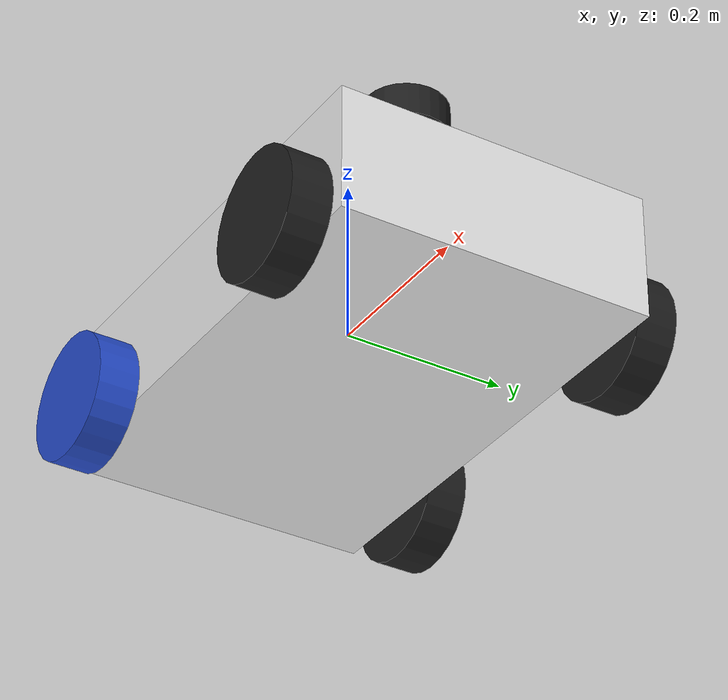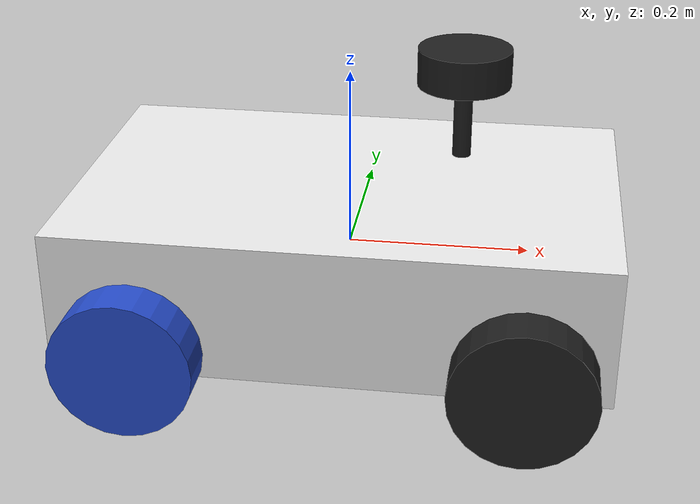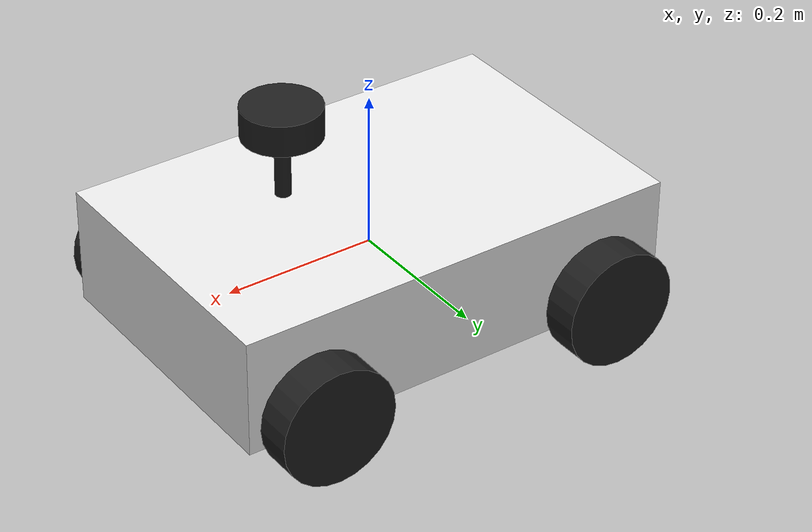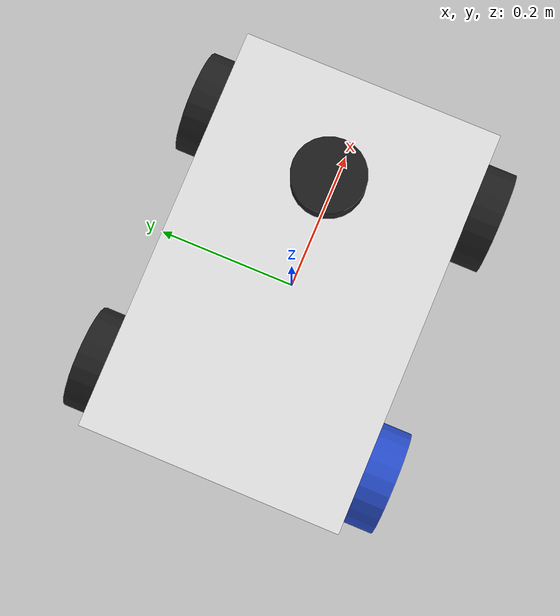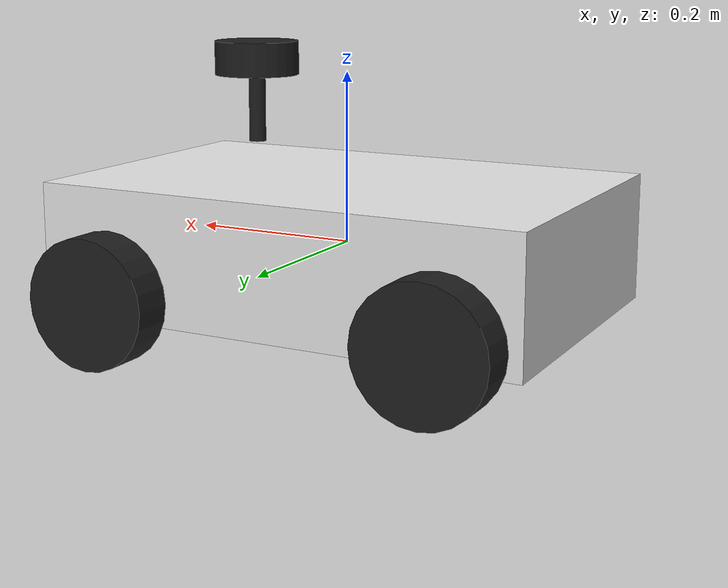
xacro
<?xml version="1.0"?>
<robot xmlns:xacro="http://www.ros.org/wiki/xacro"  name="robot">

    <!-- DIFF DRIVE GAZEBO -->

    <!-- SLAM STUFF -->
    <xacro:arg name="use_ros2_control" default="true"/>
    <xacro:arg name="sim_mode" default="false"/>

    <xacro:include filename="robot_core.xacro" />

    <xacro:if value="$(arg use_ros2_control)">
        <xacro:include filename="ros2_control.xacro" />
    </xacro:if>
    <xacro:unless value="$(arg use_ros2_control)">
        <xacro:include filename="gazebo_control.xacro" />
    </xacro:unless>
    <xacro:include filename="lidar.xacro" />
</robot>

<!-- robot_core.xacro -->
<robot xmlns:xacro="http://www.ros.org/wiki/xacro">

    <!-- Body Dimensions -->
    <xacro:property name="body_link_x_dim" value="0.59" />
    <xacro:property name="body_link_y_dim" value="0.38" />
    <xacro:property name="body_link_z_dim" value="0.1524" />

    <!-- wheel Dimesnions  -->
    <xacro:property name="wheel_link_radius" value="0.0762" />
    <xacro:property name="wheel_link_length" value="0.04826" />
    <xacro:property name="wheel_link_z_location" value="-0.04826" />

    <!-- Material Density -->
    <xacro:property name="body_density" value="2710.0" />
    <xacro:property name="wheel_density" value="1100.0" />

    <!-- Pi COnstant -->
    <xacro:property name="pi_const" value="3.14159265" />

    <!-- Robot body and wheel mass -->
    <xacro:property name="body_mass" value="${body_density*body_link_x_dim*body_link_y_dim*body_link_z_dim}" />
    <xacro:property name="wheel_mass" value="${wheel_density*pi_const*wheel_link_radius*wheel_link_radius*wheel_link_length}" />

    <!-- mOMENT OF INERTIA OF THE wheel -->
    <xacro:property name="Iz_wheel" value="${0.5*wheel_mass*wheel_link_radius*wheel_link_radius}" />
    <xacro:property name="I_wheel" value="${(1.0/12.0)*wheel_mass*(3.0*wheel_link_radius*wheel_link_radius+wheel_link_length*wheel_link_length)}" />

    <!-- This macro defines the complete inertial section of the wheel -->
    <xacro:macro name="inertia_wheel">
        <inertial>
        <origin rpu="0 0 0" xyz="0 0 0"/>
        <mass value="${wheel_mass}" />
        <inertia ixx="${I_wheel}" ixy="0.0" ixz="0.0" iyy="${I_wheel}" iyz="0" izz="${Iz_wheel}"/>
        </inertial>
    </xacro:macro>

    <!-- Addin Gazebo Options -->
    <link name="base_link">
    </link>
    <joint name="base_footprint_joint" type="fixed">
        <parent link="base_link" />
        <child link="base_footprint" />
        <origin xyz ="0 0 0" rpy="0 0 0"/>
    </joint>
    <link name="base_footprint"></link>

    <joint name="body_joint" type="fixed">
        <parent link="base_link" />
        <child link="body_link" />
    </joint>

    <link name="body_link">
        <visual>
            <geometry>
                <box size="${body_link_x_dim} ${body_link_y_dim} ${body_link_z_dim}" />
            </geometry>
            <origin rpy="0 0 0" xyz="0 0 0" />
        </visual>
        <collision>
            <geometry>
                <box size="${body_link_x_dim} ${body_link_y_dim} ${body_link_z_dim}" />
            </geometry>"
            <origin rpy="0 0 0" xyz="0 0 0" />
        </collision>
        <inertial>
            <origin rpu="0 0 0" xyz="0 0 0"/>
            <mass value="${body_mass}" />
        <inertia ixx="${(1.0/12.0)*body_mass*((body_link_y_dim*body_link_y_dim)+(body_link_z_dim*body_link_z_dim))}" ixy="0" ixz="0"
        iyy="${(1.0/12.0)*body_mass*((body_link_x_dim*body_link_x_dim)+(body_link_z_dim*body_link_z_dim))}" iyz="0"
        izz="${(1.0/12.0)*body_mass*((body_link_y_dim*body_link_y_dim)+(body_link_x_dim*body_link_x_dim))}"></inertia>

        </inertial>

    </link>
    <gazebo reference="body_link">
        <material>Gazebo/White</material>
    </gazebo>

    <!-- BACK Right wheel  -->
    <joint name="wheel1_joint" type="continuous">
        <parent link="body_link" />
        <child link="wheel1_link" />
        <origin xyz="${(-body_link_x_dim/2)+(1.2*wheel_link_radius)} ${(-body_link_y_dim/2)-(wheel_link_length/2)} ${wheel_link_z_location}" rpy="0 0 0" />
        <axis xyz="0 1 0" />
        <limit effort="1000" velocity="1000"/>
        <dynamics damping="1.0" friction="1.0" />
    </joint>
    <link name="wheel1_link">
        <visual>
            <origin rpy="1.570795 0 0" xyz="0 0 0" />
            <geometry>
                <cylinder length="${wheel_link_length}" radius="${wheel_link_radius}"/>
            </geometry>
            <material name="blue" />
        </visual>
        <collision>
            <origin rpy="1.570795 0 0" xyz="0 0 0" />
            <geometry>
                <cylinder length="${wheel_link_length}" radius="${wheel_link_radius}"/>
            </geometry>
            <material name="black" />
        </collision>

        <xacro:inertia_wheel />
    </link>
    <gazebo reference="wheel1_link">
        <material>Gazebo/Black</material>
    </gazebo>

    <!-- BACK Left wheel  -->
    <joint name="wheel2_joint" type="continuous">
        <parent link="body_link" />
        <child link="wheel2_link" />
        <origin xyz="${-body_link_x_dim/2+1.2*wheel_link_radius} ${body_link_y_dim/2+wheel_link_length/2} ${wheel_link_z_location}" rpy="0 0 0" />
        <axis xyz="0 1 0" />
        <limit effort="1000" velocity="1000"/>
        <dynamics damping="1.0" friction="1.0" />
    </joint>
    <link name="wheel2_link">
        <visual>
            <origin rpy="1.570795 0 0" xyz="0 0 0" />
            <geometry>
                <cylinder length="${wheel_link_length}" radius="${wheel_link_radius}"/>
            </geometry>
            <material name="black" />
        </visual>
        <collision>
            <origin rpy="1.570795 0 0" xyz="0 0 0" />
            <geometry>
                <cylinder length="${wheel_link_length}" radius="${wheel_link_radius}"/>
            </geometry>
            <material name="black" />
        </collision>

        <xacro:inertia_wheel />
    </link>
    <gazebo reference="wheel2_link">
        <material>Gazebo/Black</material>
    </gazebo>

    <!-- FRONT right wheel  -->
    <joint name="wheel3_joint" type="continuous">
        <parent link="body_link" />
        <child link="wheel3_link" />
        <origin xyz="${body_link_x_dim/2-1.2*wheel_link_radius} ${-body_link_y_dim/2-wheel_link_length/2} ${wheel_link_z_location}" rpy="0 0 0" />
        <axis xyz="0 1 0" />
        <limit effort="1000" velocity="1000"/>
        <dynamics damping="1.0" friction="1.0" />
    </joint>
    <link name="wheel3_link">
        <visual>
            <origin rpy="1.570795 0 0" xyz="0 0 0" />
            <geometry>
                <cylinder length="${wheel_link_length}" radius="${wheel_link_radius}"/>
            </geometry>
            <material name="black" />
        </visual>
        <collision>
            <origin rpy="1.570795 0 0" xyz="0 0 0" />
            <geometry>
                <cylinder length="${wheel_link_length}" radius="${wheel_link_radius}"/>
            </geometry>
            <material name="black" />
        </collision>

        <xacro:inertia_wheel />
    </link>
    <gazebo reference="wheel3_link">
        <material>Gazebo/Black</material>
    </gazebo>

    <!-- FRONT left wheel  -->
    <joint name="wheel4_joint" type="continuous">
        <parent link="body_link" />
        <child link="wheel4_link" />
        <origin xyz="${body_link_x_dim/2-1.2*wheel_link_radius} ${body_link_y_dim/2+wheel_link_length/2} ${wheel_link_z_location}" rpy="0 0 0" />
        <axis xyz="0 1 0" />
        <limit effort="1000" velocity="1000"/>
        <dynamics damping="1.0" friction="1.0" />
    </joint>
    <link name="wheel4_link">
        <visual>
            <origin rpy="1.570795 0 0" xyz="0 0 0" />
            <geometry>
                <cylinder length="${wheel_link_length}" radius="${wheel_link_radius}"/>
            </geometry>
            <material name="black" />
        </visual>
        <collision>
            <origin rpy="1.570795 0 0" xyz="0 0 0" />
            <geometry>
                <cylinder length="${wheel_link_length}" radius="${wheel_link_radius}"/>
            </geometry>
            <material name="black" />
        </collision>

        <xacro:inertia_wheel />
    </link>
    <gazebo reference="wheel4_link">
        <material>Gazebo/Black</material>
    </gazebo>

</robot>

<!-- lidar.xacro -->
<robot xmlns:xacro="http://www.ros.org/wiki/xacro" >

    <xacro:macro name="inertial_cylinder" params="mass length radius *origin">
        <inertial>
            <xacro:insert_block name="origin"/>
            <mass value="${mass}" />
            <inertia ixx="${(1/12) * mass * (3*radius*radius + length*length)}" ixy="0.0" ixz="0.0"
                    iyy="${(1/12) * mass * (3*radius*radius + length*length)}" iyz="0.0"
                    izz="${(1/2) * mass * (radius*radius)}" />
        </inertial>
    </xacro:macro>

    <joint name="laser_joint" type="fixed">
        <parent link="body_link"/>
        <child link="laser_frame"/>
        <origin xyz="0.122 0 0.212" rpy="0 0 0"/>
    </joint>

    <link name="laser_frame">
        <visual>
            <geometry>
                <cylinder radius="0.05" length="0.04"/>
            </geometry>
            <material name="black"/>
        </visual>
        <visual>
            <origin xyz="0 0 -0.05"/>
            <geometry>
                <cylinder radius="0.01" length="0.1"/>
            </geometry>
            <material name="black"/>
        </visual>
        <collision>
            <geometry>
                <cylinder radius="0.05" length="0.04"/>
            </geometry>
        </collision>
        <xacro:inertial_cylinder mass="0.1" length="0.04" radius="0.05">
            <origin xyz="0 0 0" rpy="0 0 0"/>
        </xacro:inertial_cylinder>
    </link>

    <gazebo reference="laser_frame">

        <sensor name="laser" type="ray">
            <pose> 0 0 0 0 0 0 </pose>
            <visualize>true</visualize>
            <update_rate>10</update_rate>
            <ray>
                <scan>
                    <horizontal>
                        <samples>360</samples>
                        <min_angle>-3.14</min_angle>
                        <max_angle>3.14</max_angle>
                    </horizontal>
                </scan>
                <range>
                    <min>0.3</min>
                    <max>12</max>
                </range>
            </ray>
            <plugin name="laser_controller" filename="libgazebo_ros_ray_sensor.so">
                <ros>
                    <argument>~/out:=scan</argument>
                </ros>
                <output_type>sensor_msgs/LaserScan</output_type>
                <frame_name>laser_frame</frame_name>
            </plugin>
        </sensor>
    </gazebo>

</robot>
